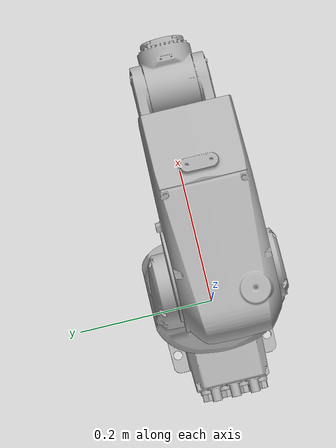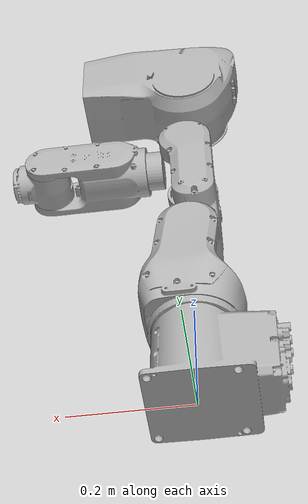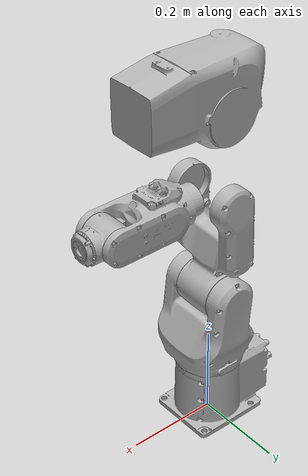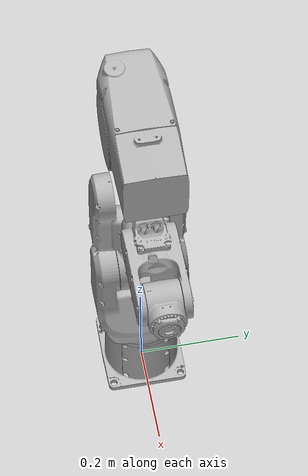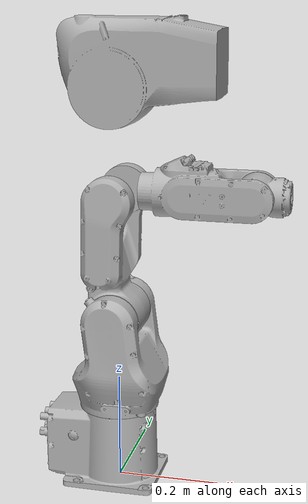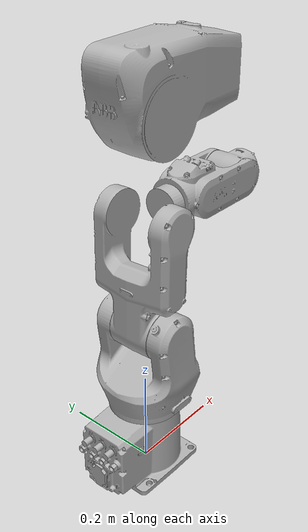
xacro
<?xml version="1.0" ?>
<robot name="IRB1100_4kg-475-STD" xmlns:xacro="http://www.ros.org/wiki/xacro">

<xacro:include filename="$(find IRB1100_4kg-475-STD_description)/urdf/materials.xacro" />
<xacro:include filename="$(find IRB1100_4kg-475-STD_description)/urdf/IRB1100_4kg-475-STD.trans" />
<xacro:include filename="$(find IRB1100_4kg-475-STD_description)/urdf/IRB1100_4kg-475-STD.gazebo" />
<link name="base_link">
  <inertial>
    <origin xyz="-0.02787704551344377 6.546822329351464e-06 0.07388271158666021" rpy="0 0 0"/>
    <mass value="27.850494502837474"/>
    <inertia ixx="0.08843" iyy="0.137195" izz="0.117326" ixy="2.6e-05" iyz="2e-06" ixz="-0.000602"/>
  </inertial>
  <visual>
    <origin xyz="0 0 0" rpy="0 0 0"/>
    <geometry>
      <mesh filename="package://IRB1100_4kg-475-STD_description/meshes/base_link.stl" scale="0.001 0.001 0.001"/>
    </geometry>
    <material name="silver"/>
  </visual>
  <collision>
    <origin xyz="0 0 0" rpy="0 0 0"/>
    <geometry>
      <mesh filename="package://IRB1100_4kg-475-STD_description/meshes/base_link.stl" scale="0.001 0.001 0.001"/>
    </geometry>
  </collision>
</link>

<link name="link_1_1">
  <inertial>
    <origin xyz="0.006224760554789564 0.0005888154902042292 0.09006136295556111" rpy="0 0 0"/>
    <mass value="24.887771906712818"/>
    <inertia ixx="0.147959" iyy="0.109504" izz="0.106644" ixy="0.000149" iyz="-0.001709" ixz="0.001207"/>
  </inertial>
  <visual>
    <origin xyz="0.0 0.0 -0.146" rpy="0 0 0"/>
    <geometry>
      <mesh filename="package://IRB1100_4kg-475-STD_description/meshes/link_1_1.stl" scale="0.001 0.001 0.001"/>
    </geometry>
    <material name="silver"/>
  </visual>
  <collision>
    <origin xyz="0.0 0.0 -0.146" rpy="0 0 0"/>
    <geometry>
      <mesh filename="package://IRB1100_4kg-475-STD_description/meshes/link_1_1.stl" scale="0.001 0.001 0.001"/>
    </geometry>
  </collision>
</link>

<link name="link_2_1">
  <inertial>
    <origin xyz="-0.008027679670801875 0.052705702406375565 0.09362262970446988" rpy="0 0 0"/>
    <mass value="17.325080500260935"/>
    <inertia ixx="0.162571" iyy="0.128779" izz="0.052568" ixy="-9.1e-05" iyz="-0.006451" ixz="0.001702"/>
  </inertial>
  <visual>
    <origin xyz="0.0 0.0525 -0.327" rpy="0 0 0"/>
    <geometry>
      <mesh filename="package://IRB1100_4kg-475-STD_description/meshes/link_2_1.stl" scale="0.001 0.001 0.001"/>
    </geometry>
    <material name="silver"/>
  </visual>
  <collision>
    <origin xyz="0.0 0.0525 -0.327" rpy="0 0 0"/>
    <geometry>
      <mesh filename="package://IRB1100_4kg-475-STD_description/meshes/link_2_1.stl" scale="0.001 0.001 0.001"/>
    </geometry>
  </collision>
</link>

<link name="link_3_1">
  <inertial>
    <origin xyz="-0.006772920531733471 0.058186223599002704 0.004485082427170051" rpy="0 0 0"/>
    <mass value="8.02511707118897"/>
    <inertia ixx="0.011935" iyy="0.016404" izz="0.016998" ixy="0.000252" iyz="-0.000352" ixz="-0.000935"/>
  </inertial>
  <visual>
    <origin xyz="0.0 0.063 -0.552" rpy="0 0 0"/>
    <geometry>
      <mesh filename="package://IRB1100_4kg-475-STD_description/meshes/link_3_1.stl" scale="0.001 0.001 0.001"/>
    </geometry>
    <material name="silver"/>
  </visual>
  <collision>
    <origin xyz="0.0 0.063 -0.552" rpy="0 0 0"/>
    <geometry>
      <mesh filename="package://IRB1100_4kg-475-STD_description/meshes/link_3_1.stl" scale="0.001 0.001 0.001"/>
    </geometry>
  </collision>
</link>

<link name="link_4_1">
  <inertial>
    <origin xyz="0.07723634471464087 -0.00032498614307843775 0.0027246283135325955" rpy="0 0 0"/>
    <mass value="10.264284403829079"/>
    <inertia ixx="0.014276" iyy="0.038755" izz="0.042088" ixy="0.000328" iyz="-9e-06" ixz="0.000612"/>
  </inertial>
  <visual>
    <origin xyz="-0.0725 0.0 -0.562" rpy="0 0 0"/>
    <geometry>
      <mesh filename="package://IRB1100_4kg-475-STD_description/meshes/link_4_1.stl" scale="0.001 0.001 0.001"/>
    </geometry>
    <material name="silver"/>
  </visual>
  <collision>
    <origin xyz="-0.0725 0.0 -0.562" rpy="0 0 0"/>
    <geometry>
      <mesh filename="package://IRB1100_4kg-475-STD_description/meshes/link_4_1.stl" scale="0.001 0.001 0.001"/>
    </geometry>
  </collision>
</link>

<link name="link_5_1">
  <inertial>
    <origin xyz="0.012701377047647011 -0.02631192635435389 -4.3645516738521906e-06" rpy="0 0 0"/>
    <mass value="2.582057596654616"/>
    <inertia ixx="0.00162" iyy="0.002724" izz="0.002458" ixy="5e-06" iyz="0.0" ixz="-0.0"/>
  </inertial>
  <visual>
    <origin xyz="-0.25 -0.0265 -0.562" rpy="0 0 0"/>
    <geometry>
      <mesh filename="package://IRB1100_4kg-475-STD_description/meshes/link_5_1.stl" scale="0.001 0.001 0.001"/>
    </geometry>
    <material name="silver"/>
  </visual>
  <collision>
    <origin xyz="-0.25 -0.0265 -0.562" rpy="0 0 0"/>
    <geometry>
      <mesh filename="package://IRB1100_4kg-475-STD_description/meshes/link_5_1.stl" scale="0.001 0.001 0.001"/>
    </geometry>
  </collision>
</link>

<link name="link_6_1">
  <inertial>
    <origin xyz="0.003683264798293173 -5.8526723754688026e-05 -3.672223617057213e-05" rpy="0 0 0"/>
    <mass value="0.05751158667684128"/>
    <inertia ixx="1.4e-05" iyy="7e-06" izz="7e-06" ixy="0.0" iyz="-0.0" ixz="0.0"/>
  </inertial>
  <visual>
    <origin xyz="-0.306 -0.0 -0.562" rpy="0 0 0"/>
    <geometry>
      <mesh filename="package://IRB1100_4kg-475-STD_description/meshes/link_6_1.stl" scale="0.001 0.001 0.001"/>
    </geometry>
    <material name="silver"/>
  </visual>
  <collision>
    <origin xyz="-0.306 -0.0 -0.562" rpy="0 0 0"/>
    <geometry>
      <mesh filename="package://IRB1100_4kg-475-STD_description/meshes/link_6_1.stl" scale="0.001 0.001 0.001"/>
    </geometry>
  </collision>
</link>

<joint name="j1" type="continuous">
  <origin xyz="0.0 0.0 0.146" rpy="0 0 0"/>
  <parent link="base_link"/>
  <child link="link_1_1"/>
  <axis xyz="0.0 0.0 1.0"/>
</joint>

<joint name="j2" type="continuous">
  <origin xyz="0.0 -0.0525 0.181" rpy="0 0 0"/>
  <parent link="link_1_1"/>
  <child link="link_2_1"/>
  <axis xyz="0.0 -1.0 0.0"/>
</joint>

<joint name="j3" type="continuous">
  <origin xyz="0.0 -0.0105 0.225" rpy="0 0 0"/>
  <parent link="link_2_1"/>
  <child link="link_3_1"/>
  <axis xyz="0.0 -1.0 0.0"/>
</joint>

<joint name="j4" type="continuous">
  <origin xyz="0.0725 0.063 0.01" rpy="0 0 0"/>
  <parent link="link_3_1"/>
  <child link="link_4_1"/>
  <axis xyz="1.0 0.0 0.0"/>
</joint>

<joint name="j5" type="continuous">
  <origin xyz="0.1775 0.0265 0.0" rpy="0 0 0"/>
  <parent link="link_4_1"/>
  <child link="link_5_1"/>
  <axis xyz="0.0 -1.0 0.0"/>
</joint>

<joint name="j6" type="continuous">
  <origin xyz="0.056 -0.0265 0.0" rpy="0 0 0"/>
  <parent link="link_5_1"/>
  <child link="link_6_1"/>
  <axis xyz="-1.0 0.0 0.0"/>
</joint>

</robot>

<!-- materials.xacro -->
<robot name="IRB1100_4kg-475-STD" xmlns:xacro="http://www.ros.org/wiki/xacro" >

<material name="silver">
  <color rgba="0.700 0.700 0.700 1.000"/>
</material>

</robot>
